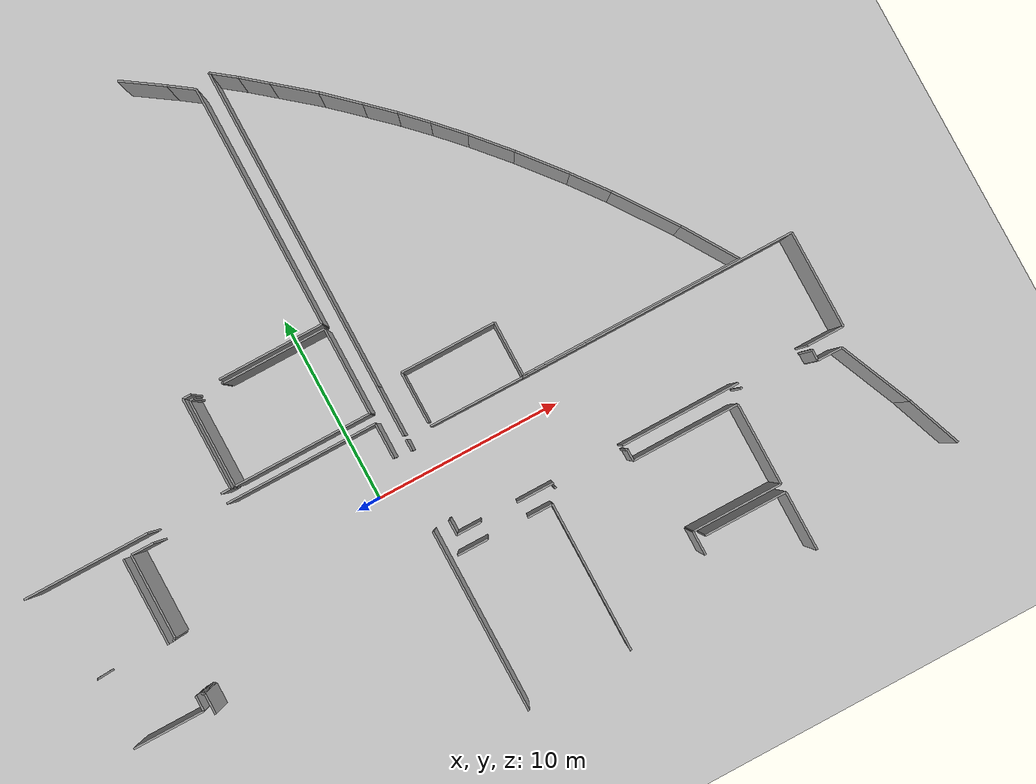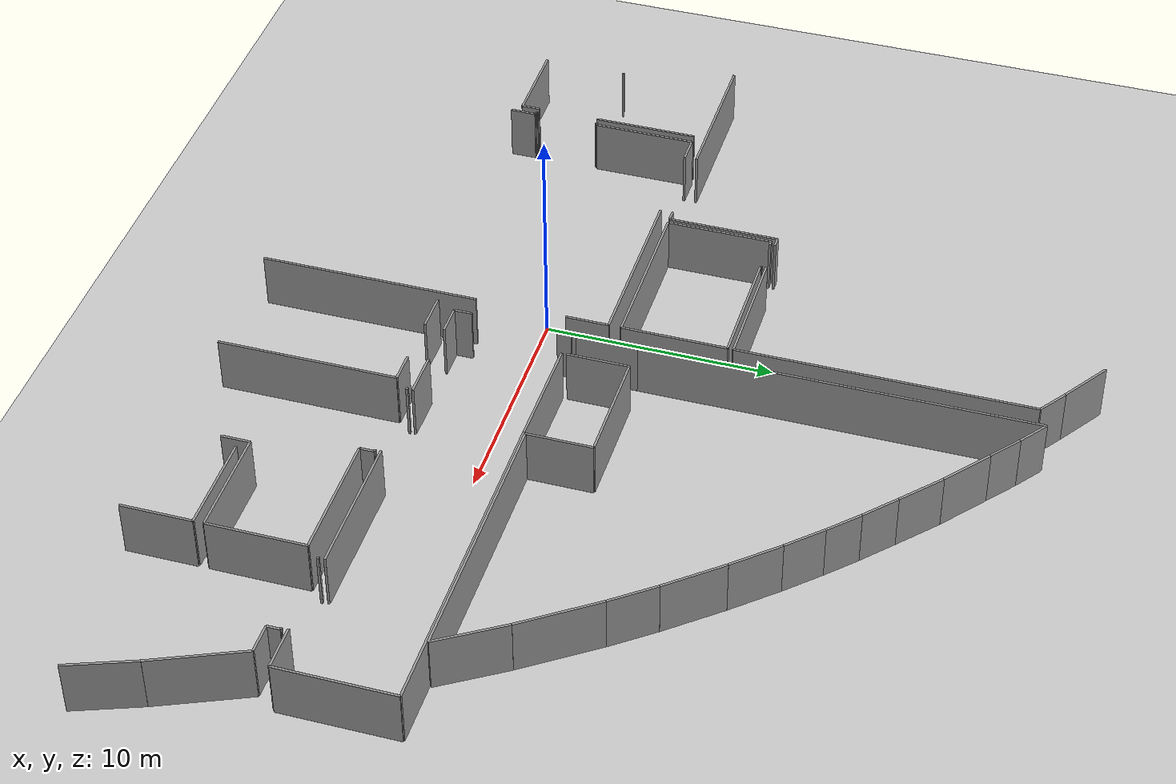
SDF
<sdf version="1.6">
 <world name="default">
  <model name="ground_plane">
   <static>1</static>
   <link name="link">
    <collision name="collision">
     <geometry><plane><normal>0 0 1</normal><size>100 100</size></plane></geometry>
     <surface><friction><ode><mu>100</mu><mu2>50</mu2></ode></friction></surface>
    </collision>
    <visual name="visual">
     <cast_shadows>0</cast_shadows>
     <geometry><plane><normal>0 0 1</normal><size>100 100</size></plane></geometry>
     <material>
      <script><uri>file://media/materials/scripts/gazebo.material</uri><name>Gazebo/Grey</name></script>
     </material>
    </visual>
   </link>
  </model>
  <model name="50041192">
   <static>1</static>
   <link name="Wall_31">
    <collision name="Wall_31_Collision">
     <geometry><box><size>2.39887418967 0.1 2.5</size></box></geometry>
     <pose>1.19943709484 0 1.25 0 0 0</pose>
    </collision>
    <visual name="Wall_31_Visual">
     <pose>1.19943709484 0 1.25 0 0 0</pose>
     <geometry><box><size>2.39887418967 0.1 2.5</size></box></geometry>
     <material>
      <script><uri>file://media/materials/scripts/gazebo.material</uri><name>Gazebo/Grey</name></script>
      <ambient>1 1 1 1</ambient>
     </material>
    </visual>
    <pose>28.3542373528 -10.1845017981 0 0 0 -0.59238087215</pose>
   </link>
   <link name="Wall_32">
    <collision name="Wall_32_Collision">
     <geometry><box><size>1.42702038407 0.1 2.5</size></box></geometry>
     <pose>0.713510192037 0 1.25 0 0 0</pose>
    </collision>
    <visual name="Wall_32_Visual">
     <pose>0.713510192037 0 1.25 0 0 0</pose>
     <geometry><box><size>1.42702038407 0.1 2.5</size></box></geometry>
     <material>
      <script><uri>file://media/materials/scripts/gazebo.material</uri><name>Gazebo/Grey</name></script>
      <ambient>1 1 1 1</ambient>
     </material>
    </visual>
    <pose>30.3443762469 -11.5238839541 0 0 0 -0.618707060109</pose>
   </link>
   <link name="Wall_33">
    <collision name="Wall_33_Collision">
     <geometry><box><size>12.8781467221 0.1 2.5</size></box></geometry>
     <pose>6.43907336104 0 1.25 0 0 0</pose>
    </collision>
    <visual name="Wall_33_Visual">
     <pose>6.43907336104 0 1.25 0 0 0</pose>
     <geometry><box><size>12.8781467221 0.1 2.5</size></box></geometry>
     <material>
      <script><uri>file://media/materials/scripts/gazebo.material</uri><name>Gazebo/Grey</name></script>
      <ambient>1 1 1 1</ambient>
     </material>
    </visual>
    <pose>31.5068684635 -12.3515306317 0 0 0 -1.57079632679</pose>
   </link>
   <link name="Wall_34">
    <collision name="Wall_34_Collision">
     <geometry><box><size>5.59884614896 0.1 2.5</size></box></geometry>
     <pose>2.79942307448 0 1.25 0 0 0</pose>
    </collision>
    <visual name="Wall_34_Visual">
     <pose>2.79942307448 0 1.25 0 0 0</pose>
     <geometry><box><size>5.59884614896 0.1 2.5</size></box></geometry>
     <material>
      <script><uri>file://media/materials/scripts/gazebo.material</uri><name>Gazebo/Grey</name></script>
      <ambient>1 1 1 1</ambient>
     </material>
    </visual>
    <pose>31.5068684635 -25.2296773538 0 0 0 3.14159265359</pose>
   </link>
   <link name="Wall_35">
    <collision name="Wall_35_Collision">
     <geometry><box><size>0.44197069625 0.1 2.5</size></box></geometry>
     <pose>0.220985348125 0 1.25 0 0 0</pose>
    </collision>
    <visual name="Wall_35_Visual">
     <pose>0.220985348125 0 1.25 0 0 0</pose>
     <geometry><box><size>0.44197069625 0.1 2.5</size></box></geometry>
     <material>
      <script><uri>file://media/materials/scripts/gazebo.material</uri><name>Gazebo/Grey</name></script>
      <ambient>1 1 1 1</ambient>
     </material>
    </visual>
    <pose>24.3843798051 -25.2296773538 0 0 0 3.14159265359</pose>
   </link>
   <link name="Wall_36">
    <collision name="Wall_36_Collision">
     <geometry><box><size>4.86841269236 0.1 2.5</size></box></geometry>
     <pose>2.43420634618 0 1.25 0 0 0</pose>
    </collision>
    <visual name="Wall_36_Visual">
     <pose>2.43420634618 0 1.25 0 0 0</pose>
     <geometry><box><size>4.86841269236 0.1 2.5</size></box></geometry>
     <material>
      <script><uri>file://media/materials/scripts/gazebo.material</uri><name>Gazebo/Grey</name></script>
      <ambient>1 1 1 1</ambient>
     </material>
    </visual>
    <pose>23.9424091088 -25.2296773538 0 0 0 -1.57079632679</pose>
   </link>
   <link name="Wall_37">
    <collision name="Wall_37_Collision">
     <geometry><box><size>0.509321032366 0.1 2.5</size></box></geometry>
     <pose>0.254660516183 0 1.25 0 0 0</pose>
    </collision>
    <visual name="Wall_37_Visual">
     <pose>0.254660516183 0 1.25 0 0 0</pose>
     <geometry><box><size>0.509321032366 0.1 2.5</size></box></geometry>
     <material>
      <script><uri>file://media/materials/scripts/gazebo.material</uri><name>Gazebo/Grey</name></script>
      <ambient>1 1 1 1</ambient>
     </material>
    </visual>
    <pose>23.9424091088 -30.0980900461 0 0 0 3.14159265359</pose>
   </link>
   <link name="Wall_38">
    <collision name="Wall_38_Collision">
     <geometry><box><size>6.66437929676 0.1 2.5</size></box></geometry>
     <pose>3.33218964838 0 1.25 0 0 0</pose>
    </collision>
    <visual name="Wall_38_Visual">
     <pose>3.33218964838 0 1.25 0 0 0</pose>
     <geometry><box><size>6.66437929676 0.1 2.5</size></box></geometry>
     <material>
      <script><uri>file://media/materials/scripts/gazebo.material</uri><name>Gazebo/Grey</name></script>
      <ambient>1 1 1 1</ambient>
     </material>
    </visual>
    <pose>19.4511582987 -30.0980900461 0 0 0 3.14159265359</pose>
   </link>
   <link name="Wall_40">
    <collision name="Wall_40_Collision">
     <geometry><box><size>4.64069231062 0.1 2.5</size></box></geometry>
     <pose>2.32034615531 0 1.25 0 0 0</pose>
    </collision>
    <visual name="Wall_40_Visual">
     <pose>2.32034615531 0 1.25 0 0 0</pose>
     <geometry><box><size>4.64069231062 0.1 2.5</size></box></geometry>
     <material>
      <script><uri>file://media/materials/scripts/gazebo.material</uri><name>Gazebo/Grey</name></script>
      <ambient>1 1 1 1</ambient>
     </material>
    </visual>
    <pose>24.1813121879 -30.1007586444 0 0 0 1.57079632679</pose>
   </link>
   <link name="Wall_41">
    <collision name="Wall_41_Collision">
     <geometry><box><size>0.213614933984 0.1 2.5</size></box></geometry>
     <pose>0.106807466992 0 1.25 0 0 0</pose>
    </collision>
    <visual name="Wall_41_Visual">
     <pose>0.106807466992 0 1.25 0 0 0</pose>
     <geometry><box><size>0.213614933984 0.1 2.5</size></box></geometry>
     <material>
      <script><uri>file://media/materials/scripts/gazebo.material</uri><name>Gazebo/Grey</name></script>
      <ambient>1 1 1 1</ambient>
     </material>
    </visual>
    <pose>24.1813121879 -25.4600663337 0 0 0 0.0</pose>
   </link>
   <link name="Wall_42">
    <collision name="Wall_42_Collision">
     <geometry><box><size>0.0908594157041 0.1 2.5</size></box></geometry>
     <pose>0.045429707852 0 1.25 0 0 0</pose>
    </collision>
    <visual name="Wall_42_Visual">
     <pose>0.045429707852 0 1.25 0 0 0</pose>
     <geometry><box><size>0.0908594157041 0.1 2.5</size></box></geometry>
     <material>
      <script><uri>file://media/materials/scripts/gazebo.material</uri><name>Gazebo/Grey</name></script>
      <ambient>1 1 1 1</ambient>
     </material>
    </visual>
    <pose>25.9293711004 -25.4600663337 0 0 0 0.0</pose>
   </link>
   <link name="Wall_43">
    <collision name="Wall_43_Collision">
     <geometry><box><size>0.0198238725173 0.1 2.5</size></box></geometry>
     <pose>0.00991193625863 0 1.25 0 0 0</pose>
    </collision>
    <visual name="Wall_43_Visual">
     <pose>0.00991193625863 0 1.25 0 0 0</pose>
     <geometry><box><size>0.0198238725173 0.1 2.5</size></box></geometry>
     <material>
      <script><uri>file://media/materials/scripts/gazebo.material</uri><name>Gazebo/Grey</name></script>
      <ambient>1 1 1 1</ambient>
     </material>
    </visual>
    <pose>26.0202305161 -25.4600663337 0 0 0 -1.57079632679</pose>
   </link>
   <link name="Wall_44">
    <collision name="Wall_44_Collision">
     <geometry><box><size>5.476471859 0.1 2.5</size></box></geometry>
     <pose>2.7382359295 0 1.25 0 0 0</pose>
    </collision>
    <visual name="Wall_44_Visual">
     <pose>2.7382359295 0 1.25 0 0 0</pose>
     <geometry><box><size>5.476471859 0.1 2.5</size></box></geometry>
     <material>
      <script><uri>file://media/materials/scripts/gazebo.material</uri><name>Gazebo/Grey</name></script>
      <ambient>1 1 1 1</ambient>
     </material>
    </visual>
    <pose>26.0202305161 -25.4798902062 0 0 0 0.0</pose>
   </link>
   <link name="Wall_45">
    <collision name="Wall_45_Collision">
     <geometry><box><size>4.61603954608 0.1 2.5</size></box></geometry>
     <pose>2.30801977304 0 1.25 0 0 0</pose>
    </collision>
    <visual name="Wall_45_Visual">
     <pose>2.30801977304 0 1.25 0 0 0</pose>
     <geometry><box><size>4.61603954608 0.1 2.5</size></box></geometry>
     <material>
      <script><uri>file://media/materials/scripts/gazebo.material</uri><name>Gazebo/Grey</name></script>
      <ambient>1 1 1 1</ambient>
     </material>
    </visual>
    <pose>31.4967023751 -25.4798902062 0 0 0 -1.57079632679</pose>
   </link>
   <link name="Wall_46">
    <collision name="Wall_46_Collision">
     <geometry><box><size>7.31539178096 0.1 2.5</size></box></geometry>
     <pose>3.65769589048 0 1.25 0 0 0</pose>
    </collision>
    <visual name="Wall_46_Visual">
     <pose>3.65769589048 0 1.25 0 0 0</pose>
     <geometry><box><size>7.31539178096 0.1 2.5</size></box></geometry>
     <material>
      <script><uri>file://media/materials/scripts/gazebo.material</uri><name>Gazebo/Grey</name></script>
      <ambient>1 1 1 1</ambient>
     </material>
    </visual>
    <pose>31.4967023751 -30.0959297523 0 0 0 -3.14093255328</pose>
   </link>
   <link name="Wall_54">
    <collision name="Wall_54_Collision">
     <geometry><box><size>1.13110441844 0.1 2.5</size></box></geometry>
     <pose>0.565552209218 0 1.25 0 0 0</pose>
    </collision>
    <visual name="Wall_54_Visual">
     <pose>0.565552209218 0 1.25 0 0 0</pose>
     <geometry><box><size>1.13110441844 0.1 2.5</size></box></geometry>
     <material>
      <script><uri>file://media/materials/scripts/gazebo.material</uri><name>Gazebo/Grey</name></script>
      <ambient>1 1 1 1</ambient>
     </material>
    </visual>
    <pose>18.2867599405 -39.2365140483 0 0 0 1.57079632679</pose>
   </link>
   <link name="Wall_55">
    <collision name="Wall_55_Collision">
     <geometry><box><size>0.111064516539 0.1 2.5</size></box></geometry>
     <pose>0.0555322582695 0 1.25 0 0 0</pose>
    </collision>
    <visual name="Wall_55_Visual">
     <pose>0.0555322582695 0 1.25 0 0 0</pose>
     <geometry><box><size>0.111064516539 0.1 2.5</size></box></geometry>
     <material>
      <script><uri>file://media/materials/scripts/gazebo.material</uri><name>Gazebo/Grey</name></script>
      <ambient>1 1 1 1</ambient>
     </material>
    </visual>
    <pose>18.2867599405 -38.1054096298 0 0 0 3.14159265359</pose>
   </link>
   <link name="Wall_56">
    <collision name="Wall_56_Collision">
     <geometry><box><size>0.105981472304 0.1 2.5</size></box></geometry>
     <pose>0.0529907361519 0 1.25 0 0 0</pose>
    </collision>
    <visual name="Wall_56_Visual">
     <pose>0.0529907361519 0 1.25 0 0 0</pose>
     <geometry><box><size>0.105981472304 0.1 2.5</size></box></geometry>
     <material>
      <script><uri>file://media/materials/scripts/gazebo.material</uri><name>Gazebo/Grey</name></script>
      <ambient>1 1 1 1</ambient>
     </material>
    </visual>
    <pose>18.175695424 -38.1054096298 0 0 0 1.57079632679</pose>
   </link>
   <link name="Wall_57">
    <collision name="Wall_57_Collision">
     <geometry><box><size>0.0973402971039 0.1 2.5</size></box></geometry>
     <pose>0.048670148552 0 1.25 0 0 0</pose>
    </collision>
    <visual name="Wall_57_Visual">
     <pose>0.048670148552 0 1.25 0 0 0</pose>
     <geometry><box><size>0.0973402971039 0.1 2.5</size></box></geometry>
     <material>
      <script><uri>file://media/materials/scripts/gazebo.material</uri><name>Gazebo/Grey</name></script>
      <ambient>1 1 1 1</ambient>
     </material>
    </visual>
    <pose>18.175695424 -35.2355228546 0 0 0 1.57079632679</pose>
   </link>
   <link name="Wall_58">
    <collision name="Wall_58_Collision">
     <geometry><box><size>0.101025504174 0.1 2.5</size></box></geometry>
     <pose>0.0505127520872 0 1.25 0 0 0</pose>
    </collision>
    <visual name="Wall_58_Visual">
     <pose>0.0505127520872 0 1.25 0 0 0</pose>
     <geometry><box><size>0.101025504174 0.1 2.5</size></box></geometry>
     <material>
      <script><uri>file://media/materials/scripts/gazebo.material</uri><name>Gazebo/Grey</name></script>
      <ambient>1 1 1 1</ambient>
     </material>
    </visual>
    <pose>18.175695424 -35.1381825575 0 0 0 0.0</pose>
   </link>
   <link name="Wall_59">
    <collision name="Wall_59_Collision">
     <geometry><box><size>4.49214034285 0.1 2.5</size></box></geometry>
     <pose>2.24607017143 0 1.25 0 0 0</pose>
    </collision>
    <visual name="Wall_59_Visual">
     <pose>2.24607017143 0 1.25 0 0 0</pose>
     <geometry><box><size>4.49214034285 0.1 2.5</size></box></geometry>
     <material>
      <script><uri>file://media/materials/scripts/gazebo.material</uri><name>Gazebo/Grey</name></script>
      <ambient>1 1 1 1</ambient>
     </material>
    </visual>
    <pose>18.2767209282 -35.1381825575 0 0 0 1.57079632679</pose>
   </link>
   <link name="Wall_60">
    <collision name="Wall_60_Collision">
     <geometry><box><size>1.20874791913 0.1 2.5</size></box></geometry>
     <pose>0.604373959564 0 1.25 0 0 0</pose>
    </collision>
    <visual name="Wall_60_Visual">
     <pose>0.604373959564 0 1.25 0 0 0</pose>
     <geometry><box><size>1.20874791913 0.1 2.5</size></box></geometry>
     <material>
      <script><uri>file://media/materials/scripts/gazebo.material</uri><name>Gazebo/Grey</name></script>
      <ambient>1 1 1 1</ambient>
     </material>
    </visual>
    <pose>18.2767209282 -30.6460422147 0 0 0 0.0</pose>
   </link>
   <link name="Wall_61">
    <collision name="Wall_61_Collision">
     <geometry><box><size>8.04556949157 0.1 2.5</size></box></geometry>
     <pose>4.02278474578 0 1.25 0 0 0</pose>
    </collision>
    <visual name="Wall_61_Visual">
     <pose>4.02278474578 0 1.25 0 0 0</pose>
     <geometry><box><size>8.04556949157 0.1 2.5</size></box></geometry>
     <material>
      <script><uri>file://media/materials/scripts/gazebo.material</uri><name>Gazebo/Grey</name></script>
      <ambient>1 1 1 1</ambient>
     </material>
    </visual>
    <pose>23.4488455136 -30.6460422147 0 0 0 0.0</pose>
   </link>
   <link name="Wall_62">
    <collision name="Wall_62_Collision">
     <geometry><box><size>1.89012999886 0.1 2.5</size></box></geometry>
     <pose>0.945064999428 0 1.25 0 0 0</pose>
    </collision>
    <visual name="Wall_62_Visual">
     <pose>0.945064999428 0 1.25 0 0 0</pose>
     <geometry><box><size>1.89012999886 0.1 2.5</size></box></geometry>
     <material>
      <script><uri>file://media/materials/scripts/gazebo.material</uri><name>Gazebo/Grey</name></script>
      <ambient>1 1 1 1</ambient>
     </material>
    </visual>
    <pose>31.4944150051 -30.6460422147 0 0 0 -1.57079632679</pose>
   </link>
   <link name="Wall_63">
    <collision name="Wall_63_Collision">
     <geometry><box><size>9.65257392652 0.1 2.5</size></box></geometry>
     <pose>4.82628696326 0 1.25 0 0 0</pose>
    </collision>
    <visual name="Wall_63_Visual">
     <pose>4.82628696326 0 1.25 0 0 0</pose>
     <geometry><box><size>9.65257392652 0.1 2.5</size></box></geometry>
     <material>
      <script><uri>file://media/materials/scripts/gazebo.material</uri><name>Gazebo/Grey</name></script>
      <ambient>1 1 1 1</ambient>
     </material>
    </visual>
    <pose>31.4944150051 -36.510604501 0 0 0 -1.57079632679</pose>
   </link>
   <link name="Wall_72">
    <collision name="Wall_72_Collision">
     <geometry><box><size>4.61260849123 0.1 2.5</size></box></geometry>
     <pose>2.30630424561 0 1.25 0 0 0</pose>
    </collision>
    <visual name="Wall_72_Visual">
     <pose>2.30630424561 0 1.25 0 0 0</pose>
     <geometry><box><size>4.61260849123 0.1 2.5</size></box></geometry>
     <material>
      <script><uri>file://media/materials/scripts/gazebo.material</uri><name>Gazebo/Grey</name></script>
      <ambient>1 1 1 1</ambient>
     </material>
    </visual>
    <pose>17.8562260938 -30.646423443 0 0 0 -1.57079632679</pose>
   </link>
   <link name="Wall_73">
    <collision name="Wall_73_Collision">
     <geometry><box><size>0.808712337819 0.1 2.5</size></box></geometry>
     <pose>0.40435616891 0 1.25 0 0 0</pose>
    </collision>
    <visual name="Wall_73_Visual">
     <pose>0.40435616891 0 1.25 0 0 0</pose>
     <geometry><box><size>0.808712337819 0.1 2.5</size></box></geometry>
     <material>
      <script><uri>file://media/materials/scripts/gazebo.material</uri><name>Gazebo/Grey</name></script>
      <ambient>1 1 1 1</ambient>
     </material>
    </visual>
    <pose>17.8562260938 -38.0200144867 0 0 0 -1.57079632679</pose>
   </link>
   <link name="Wall_74">
    <collision name="Wall_74_Collision">
     <geometry><box><size>3.7669170066 0.1 2.5</size></box></geometry>
     <pose>1.8834585033 0 1.25 0 0 0</pose>
    </collision>
    <visual name="Wall_74_Visual">
     <pose>1.8834585033 0 1.25 0 0 0</pose>
     <geometry><box><size>3.7669170066 0.1 2.5</size></box></geometry>
     <material>
      <script><uri>file://media/materials/scripts/gazebo.material</uri><name>Gazebo/Grey</name></script>
      <ambient>1 1 1 1</ambient>
     </material>
    </visual>
    <pose>17.8562260938 -38.8287268245 0 0 0 3.14159265359</pose>
   </link>
   <link name="Wall_79">
    <collision name="Wall_79_Collision">
     <geometry><box><size>0.0510845945637 0.1 2.5</size></box></geometry>
     <pose>0.0255422972818 0 1.25 0 0 0</pose>
    </collision>
    <visual name="Wall_79_Visual">
     <pose>0.0255422972818 0 1.25 0 0 0</pose>
     <geometry><box><size>0.0510845945637 0.1 2.5</size></box></geometry>
     <material>
      <script><uri>file://media/materials/scripts/gazebo.material</uri><name>Gazebo/Grey</name></script>
      <ambient>1 1 1 1</ambient>
     </material>
    </visual>
    <pose>14.1368355508 -35.1033637045 0 0 0 3.14159265359</pose>
   </link>
   <link name="Wall_81">
    <collision name="Wall_81_Collision">
     <geometry><box><size>17.1731920247 0.1 2.5</size></box></geometry>
     <pose>8.58659601235 0 1.25 0 0 0</pose>
    </collision>
    <visual name="Wall_81_Visual">
     <pose>8.58659601235 0 1.25 0 0 0</pose>
     <geometry><box><size>17.1731920247 0.1 2.5</size></box></geometry>
     <material>
      <script><uri>file://media/materials/scripts/gazebo.material</uri><name>Gazebo/Grey</name></script>
      <ambient>1 1 1 1</ambient>
     </material>
    </visual>
    <pose>32.4150813922 -29.1052444309 0 0 0 1.57079632679</pose>
   </link>
   <link name="Wall_82">
    <collision name="Wall_82_Collision">
     <geometry><box><size>1.44503381173 0.1 2.5</size></box></geometry>
     <pose>0.722516905864 0 1.25 0 0 0</pose>
    </collision>
    <visual name="Wall_82_Visual">
     <pose>0.722516905864 0 1.25 0 0 0</pose>
     <geometry><box><size>1.44503381173 0.1 2.5</size></box></geometry>
     <material>
      <script><uri>file://media/materials/scripts/gazebo.material</uri><name>Gazebo/Grey</name></script>
      <ambient>1 1 1 1</ambient>
     </material>
    </visual>
    <pose>32.4150813922 -11.9320524062 0 0 0 -0.644398095731</pose>
   </link>
   <link name="Wall_83">
    <collision name="Wall_83_Collision">
     <geometry><box><size>1.56282057982 0.1 2.5</size></box></geometry>
     <pose>0.781410289909 0 1.25 0 0 0</pose>
    </collision>
    <visual name="Wall_83_Visual">
     <pose>0.781410289909 0 1.25 0 0 0</pose>
     <geometry><box><size>1.56282057982 0.1 2.5</size></box></geometry>
     <material>
      <script><uri>file://media/materials/scripts/gazebo.material</uri><name>Gazebo/Grey</name></script>
      <ambient>1 1 1 1</ambient>
     </material>
    </visual>
    <pose>33.5703302708 -12.8001092855 0 0 0 -0.68281746989</pose>
   </link>
   <link name="Wall_84">
    <collision name="Wall_84_Collision">
     <geometry><box><size>2.39352154909 0.1 2.5</size></box></geometry>
     <pose>1.19676077454 0 1.25 0 0 0</pose>
    </collision>
    <visual name="Wall_84_Visual">
     <pose>1.19676077454 0 1.25 0 0 0</pose>
     <geometry><box><size>2.39352154909 0.1 2.5</size></box></geometry>
     <material>
      <script><uri>file://media/materials/scripts/gazebo.material</uri><name>Gazebo/Grey</name></script>
      <ambient>1 1 1 1</ambient>
     </material>
    </visual>
    <pose>34.782763397 -13.7862198671 0 0 0 -0.683861750658</pose>
   </link>
   <link name="Wall_85">
    <collision name="Wall_85_Collision">
     <geometry><box><size>2.18574596155 0.1 2.5</size></box></geometry>
     <pose>1.09287298077 0 1.25 0 0 0</pose>
    </collision>
    <visual name="Wall_85_Visual">
     <pose>1.09287298077 0 1.25 0 0 0</pose>
     <geometry><box><size>2.18574596155 0.1 2.5</size></box></geometry>
     <material>
      <script><uri>file://media/materials/scripts/gazebo.material</uri><name>Gazebo/Grey</name></script>
      <ambient>1 1 1 1</ambient>
     </material>
    </visual>
    <pose>36.6380745428 -15.298425527 0 0 0 -0.740161555618</pose>
   </link>
   <link name="Wall_86">
    <collision name="Wall_86_Collision">
     <geometry><box><size>1.74210203803 0.1 2.5</size></box></geometry>
     <pose>0.871051019017 0 1.25 0 0 0</pose>
    </collision>
    <visual name="Wall_86_Visual">
     <pose>0.871051019017 0 1.25 0 0 0</pose>
     <geometry><box><size>1.74210203803 0.1 2.5</size></box></geometry>
     <material>
      <script><uri>file://media/materials/scripts/gazebo.material</uri><name>Gazebo/Grey</name></script>
      <ambient>1 1 1 1</ambient>
     </material>
    </visual>
    <pose>38.2519410875 -16.7725083553 0 0 0 -0.746549191015</pose>
   </link>
   <link name="Wall_87">
    <collision name="Wall_87_Collision">
     <geometry><box><size>1.66182811455 0.1 2.5</size></box></geometry>
     <pose>0.830914057274 0 1.25 0 0 0</pose>
    </collision>
    <visual name="Wall_87_Visual">
     <pose>0.830914057274 0 1.25 0 0 0</pose>
     <geometry><box><size>1.66182811455 0.1 2.5</size></box></geometry>
     <material>
      <script><uri>file://media/materials/scripts/gazebo.material</uri><name>Gazebo/Grey</name></script>
      <ambient>1 1 1 1</ambient>
     </material>
    </visual>
    <pose>39.530707941 -17.955586901 0 0 0 -0.779991057015</pose>
   </link>
   <link name="Wall_88">
    <collision name="Wall_88_Collision">
     <geometry><box><size>1.89194413627 0.1 2.5</size></box></geometry>
     <pose>0.945972068134 0 1.25 0 0 0</pose>
    </collision>
    <visual name="Wall_88_Visual">
     <pose>0.945972068134 0 1.25 0 0 0</pose>
     <geometry><box><size>1.89194413627 0.1 2.5</size></box></geometry>
     <material>
      <script><uri>file://media/materials/scripts/gazebo.material</uri><name>Gazebo/Grey</name></script>
      <ambient>1 1 1 1</ambient>
     </material>
    </visual>
    <pose>40.7121344974 -19.1243058468 0 0 0 -0.807627280386</pose>
   </link>
   <link name="Wall_89">
    <collision name="Wall_89_Collision">
     <geometry><box><size>2.39229482902 0.1 2.5</size></box></geometry>
     <pose>1.19614741451 0 1.25 0 0 0</pose>
    </collision>
    <visual name="Wall_89_Visual">
     <pose>1.19614741451 0 1.25 0 0 0</pose>
     <geometry><box><size>2.39229482902 0.1 2.5</size></box></geometry>
     <material>
      <script><uri>file://media/materials/scripts/gazebo.material</uri><name>Gazebo/Grey</name></script>
      <ambient>1 1 1 1</ambient>
     </material>
    </visual>
    <pose>42.019874703 -20.4915176699 0 0 0 -0.842596801599</pose>
   </link>
   <link name="Wall_90">
    <collision name="Wall_90_Collision">
     <geometry><box><size>2.85792089007 0.1 2.5</size></box></geometry>
     <pose>1.42896044504 0 1.25 0 0 0</pose>
    </collision>
    <visual name="Wall_90_Visual">
     <pose>1.42896044504 0 1.25 0 0 0</pose>
     <geometry><box><size>2.85792089007 0.1 2.5</size></box></geometry>
     <material>
      <script><uri>file://media/materials/scripts/gazebo.material</uri><name>Gazebo/Grey</name></script>
      <ambient>1 1 1 1</ambient>
     </material>
    </visual>
    <pose>43.6120112335 -22.2770640336 0 0 0 -0.877714743323</pose>
   </link>
   <link name="Wall_91">
    <collision name="Wall_91_Collision">
     <geometry><box><size>2.18430889218 0.1 2.5</size></box></geometry>
     <pose>1.09215444609 0 1.25 0 0 0</pose>
    </collision>
    <visual name="Wall_91_Visual">
     <pose>1.09215444609 0 1.25 0 0 0</pose>
     <geometry><box><size>2.18430889218 0.1 2.5</size></box></geometry>
     <material>
      <script><uri>file://media/materials/scripts/gazebo.material</uri><name>Gazebo/Grey</name></script>
      <ambient>1 1 1 1</ambient>
     </material>
    </visual>
    <pose>45.4379677989 -24.4756077415 0 0 0 -0.913727971563</pose>
   </link>
   <link name="Wall_92">
    <collision name="Wall_92_Collision">
     <geometry><box><size>3.73266425463 0.1 2.5</size></box></geometry>
     <pose>1.86633212731 0 1.25 0 0 0</pose>
    </collision>
    <visual name="Wall_92_Visual">
     <pose>1.86633212731 0 1.25 0 0 0</pose>
     <geometry><box><size>3.73266425463 0.1 2.5</size></box></geometry>
     <material>
      <script><uri>file://media/materials/scripts/gazebo.material</uri><name>Gazebo/Grey</name></script>
      <ambient>1 1 1 1</ambient>
     </material>
    </visual>
    <pose>46.7721398345 -26.2051135425 0 0 0 -0.956182456876</pose>
   </link>
   <link name="Wall_93">
    <collision name="Wall_93_Collision">
     <geometry><box><size>3.20976708383 0.1 2.5</size></box></geometry>
     <pose>1.60488354191 0 1.25 0 0 0</pose>
    </collision>
    <visual name="Wall_93_Visual">
     <pose>1.60488354191 0 1.25 0 0 0</pose>
     <geometry><box><size>3.20976708383 0.1 2.5</size></box></geometry>
     <material>
      <script><uri>file://media/materials/scripts/gazebo.material</uri><name>Gazebo/Grey</name></script>
      <ambient>1 1 1 1</ambient>
     </material>
    </visual>
    <pose>48.9245549159 -29.2546859314 0 0 0 -1.00489909625</pose>
   </link>
   <link name="Wall_94">
    <collision name="Wall_94_Collision">
     <geometry><box><size>11.8123594221 0.1 2.5</size></box></geometry>
     <pose>5.90617971103 0 1.25 0 0 0</pose>
    </collision>
    <visual name="Wall_94_Visual">
     <pose>5.90617971103 0 1.25 0 0 0</pose>
     <geometry><box><size>11.8123594221 0.1 2.5</size></box></geometry>
     <material>
      <script><uri>file://media/materials/scripts/gazebo.material</uri><name>Gazebo/Grey</name></script>
      <ambient>1 1 1 1</ambient>
     </material>
    </visual>
    <pose>50.6455466179 -31.9640755849 0 0 0 3.14159265359</pose>
   </link>
   <link name="Wall_95">
    <collision name="Wall_95_Collision">
     <geometry><box><size>2.88017993977 0.1 2.5</size></box></geometry>
     <pose>1.44008996988 0 1.25 0 0 0</pose>
    </collision>
    <visual name="Wall_95_Visual">
     <pose>1.44008996988 0 1.25 0 0 0</pose>
     <geometry><box><size>2.88017993977 0.1 2.5</size></box></geometry>
     <material>
      <script><uri>file://media/materials/scripts/gazebo.material</uri><name>Gazebo/Grey</name></script>
      <ambient>1 1 1 1</ambient>
     </material>
    </visual>
    <pose>38.8331871958 -31.9640755849 0 0 0 1.57079632679</pose>
   </link>
   <link name="Wall_96">
    <collision name="Wall_96_Collision">
     <geometry><box><size>5.08012148476 0.1 2.5</size></box></geometry>
     <pose>2.54006074238 0 1.25 0 0 0</pose>
    </collision>
    <visual name="Wall_96_Visual">
     <pose>2.54006074238 0 1.25 0 0 0</pose>
     <geometry><box><size>5.08012148476 0.1 2.5</size></box></geometry>
     <material>
      <script><uri>file://media/materials/scripts/gazebo.material</uri><name>Gazebo/Grey</name></script>
      <ambient>1 1 1 1</ambient>
     </material>
    </visual>
    <pose>38.8331871958 -29.0838956451 0 0 0 3.14159265359</pose>
   </link>
   <link name="Wall_97">
    <collision name="Wall_97_Collision">
     <geometry><box><size>2.71320193664 0.1 2.5</size></box></geometry>
     <pose>1.35660096832 0 1.25 0 0 0</pose>
    </collision>
    <visual name="Wall_97_Visual">
     <pose>1.35660096832 0 1.25 0 0 0</pose>
     <geometry><box><size>2.71320193664 0.1 2.5</size></box></geometry>
     <material>
      <script><uri>file://media/materials/scripts/gazebo.material</uri><name>Gazebo/Grey</name></script>
      <ambient>1 1 1 1</ambient>
     </material>
    </visual>
    <pose>33.7530657111 -29.0838956451 0 0 0 -1.57079632679</pose>
   </link>
   <link name="Wall_98">
    <collision name="Wall_98_Collision">
     <geometry><box><size>2.69185412268 0.1 2.5</size></box></geometry>
     <pose>1.34592706134 0 1.25 0 0 0</pose>
    </collision>
    <visual name="Wall_98_Visual">
     <pose>1.34592706134 0 1.25 0 0 0</pose>
     <geometry><box><size>2.69185412268 0.1 2.5</size></box></geometry>
     <material>
      <script><uri>file://media/materials/scripts/gazebo.material</uri><name>Gazebo/Grey</name></script>
      <ambient>1 1 1 1</ambient>
     </material>
    </visual>
    <pose>32.4173687622 -31.7970975817 0 0 0 1.57164606459</pose>
   </link>
   <link name="Wall_99">
    <collision name="Wall_99_Collision">
     <geometry><box><size>14.7086780273 0.1 2.5</size></box></geometry>
     <pose>7.35433901364 0 1.25 0 0 0</pose>
    </collision>
    <visual name="Wall_99_Visual">
     <pose>7.35433901364 0 1.25 0 0 0</pose>
     <geometry><box><size>14.7086780273 0.1 2.5</size></box></geometry>
     <material>
      <script><uri>file://media/materials/scripts/gazebo.material</uri><name>Gazebo/Grey</name></script>
      <ambient>1 1 1 1</ambient>
     </material>
    </visual>
    <pose>38.7593559783 -32.0407024767 0 0 0 0.0</pose>
   </link>
   <link name="Wall_100">
    <collision name="Wall_100_Collision">
     <geometry><box><size>5.14022848284 0.1 2.5</size></box></geometry>
     <pose>2.57011424142 0 1.25 0 0 0</pose>
    </collision>
    <visual name="Wall_100_Visual">
     <pose>2.57011424142 0 1.25 0 0 0</pose>
     <geometry><box><size>5.14022848284 0.1 2.5</size></box></geometry>
     <material>
      <script><uri>file://media/materials/scripts/gazebo.material</uri><name>Gazebo/Grey</name></script>
      <ambient>1 1 1 1</ambient>
     </material>
    </visual>
    <pose>53.4680340056 -32.0407024767 0 0 0 -1.57079632679</pose>
   </link>
   <link name="Wall_101">
    <collision name="Wall_101_Collision">
     <geometry><box><size>1.94922038809 0.1 2.5</size></box></geometry>
     <pose>0.974610194045 0 1.25 0 0 0</pose>
    </collision>
    <visual name="Wall_101_Visual">
     <pose>0.974610194045 0 1.25 0 0 0</pose>
     <geometry><box><size>1.94922038809 0.1 2.5</size></box></geometry>
     <material>
      <script><uri>file://media/materials/scripts/gazebo.material</uri><name>Gazebo/Grey</name></script>
      <ambient>1 1 1 1</ambient>
     </material>
    </visual>
    <pose>53.4680340056 -37.1809309596 0 0 0 3.14159265359</pose>
   </link>
   <link name="Wall_102">
    <collision name="Wall_102_Collision">
     <geometry><box><size>6.31034526578 0.1 2.5</size></box></geometry>
     <pose>3.15517263289 0 1.25 0 0 0</pose>
    </collision>
    <visual name="Wall_102_Visual">
     <pose>3.15517263289 0 1.25 0 0 0</pose>
     <geometry><box><size>6.31034526578 0.1 2.5</size></box></geometry>
     <material>
      <script><uri>file://media/materials/scripts/gazebo.material</uri><name>Gazebo/Grey</name></script>
      <ambient>1 1 1 1</ambient>
     </material>
    </visual>
    <pose>47.7396973047 -37.1809309596 0 0 0 3.14159265359</pose>
   </link>
   <link name="Wall_103">
    <collision name="Wall_103_Collision">
     <geometry><box><size>1.97768543581 0.1 2.5</size></box></geometry>
     <pose>0.988842717904 0 1.25 0 0 0</pose>
    </collision>
    <visual name="Wall_103_Visual">
     <pose>0.988842717904 0 1.25 0 0 0</pose>
     <geometry><box><size>1.97768543581 0.1 2.5</size></box></geometry>
     <material>
      <script><uri>file://media/materials/scripts/gazebo.material</uri><name>Gazebo/Grey</name></script>
      <ambient>1 1 1 1</ambient>
     </material>
    </visual>
    <pose>37.6642140978 -37.1809309596 0 0 0 3.14159265359</pose>
   </link>
   <link name="Wall_104">
    <collision name="Wall_104_Collision">
     <geometry><box><size>1.31142541268 0.1 2.5</size></box></geometry>
     <pose>0.65571270634 0 1.25 0 0 0</pose>
    </collision>
    <visual name="Wall_104_Visual">
     <pose>0.65571270634 0 1.25 0 0 0</pose>
     <geometry><box><size>1.31142541268 0.1 2.5</size></box></geometry>
     <material>
      <script><uri>file://media/materials/scripts/gazebo.material</uri><name>Gazebo/Grey</name></script>
      <ambient>1 1 1 1</ambient>
     </material>
    </visual>
    <pose>33.7362916651 -37.1809309596 0 0 0 3.14159265359</pose>
   </link>
   <link name="Wall_105">
    <collision name="Wall_105_Collision">
     <geometry><box><size>0.78863431309 0.1 2.5</size></box></geometry>
     <pose>0.394317156545 0 1.25 0 0 0</pose>
    </collision>
    <visual name="Wall_105_Visual">
     <pose>0.394317156545 0 1.25 0 0 0</pose>
     <geometry><box><size>0.78863431309 0.1 2.5</size></box></geometry>
     <material>
      <script><uri>file://media/materials/scripts/gazebo.material</uri><name>Gazebo/Grey</name></script>
      <ambient>1 1 1 1</ambient>
     </material>
    </visual>
    <pose>32.4248662524 -37.1809309596 0 0 0 1.57079632679</pose>
   </link>
   <link name="Wall_106">
    <collision name="Wall_106_Collision">
     <geometry><box><size>0.618352331211 0.1 2.5</size></box></geometry>
     <pose>0.309176165606 0 1.25 0 0 0</pose>
    </collision>
    <visual name="Wall_106_Visual">
     <pose>0.309176165606 0 1.25 0 0 0</pose>
     <geometry><box><size>0.618352331211 0.1 2.5</size></box></geometry>
     <material>
      <script><uri>file://media/materials/scripts/gazebo.material</uri><name>Gazebo/Grey</name></script>
      <ambient>1 1 1 1</ambient>
     </material>
    </visual>
    <pose>32.4248662524 -32.6263962487 0 0 0 1.57079632679</pose>
   </link>
   <link name="Wall_107">
    <collision name="Wall_107_Collision">
     <geometry><box><size>4.99686628548 0.1 2.5</size></box></geometry>
     <pose>2.49843314274 0 1.25 0 0 0</pose>
    </collision>
    <visual name="Wall_107_Visual">
     <pose>2.49843314274 0 1.25 0 0 0</pose>
     <geometry><box><size>4.99686628548 0.1 2.5</size></box></geometry>
     <material>
      <script><uri>file://media/materials/scripts/gazebo.material</uri><name>Gazebo/Grey</name></script>
      <ambient>1 1 1 1</ambient>
     </material>
    </visual>
    <pose>33.762596419 -32.0080439175 0 0 0 -0.00653585464593</pose>
   </link>
   <link name="Wall_109">
    <collision name="Wall_109_Collision">
     <geometry><box><size>1.66571359587 0.1 2.5</size></box></geometry>
     <pose>0.832856797936 0 1.25 0 0 0</pose>
    </collision>
    <visual name="Wall_109_Visual">
     <pose>0.832856797936 0 1.25 0 0 0</pose>
     <geometry><box><size>1.66571359587 0.1 2.5</size></box></geometry>
     <material>
      <script><uri>file://media/materials/scripts/gazebo.material</uri><name>Gazebo/Grey</name></script>
      <ambient>1 1 1 1</ambient>
     </material>
    </visual>
    <pose>31.9872161437 -38.0586456229 0 0 0 0.0</pose>
   </link>
   <link name="Wall_110">
    <collision name="Wall_110_Collision">
     <geometry><box><size>1.3355698728 0.1 2.5</size></box></geometry>
     <pose>0.667784936398 0 1.25 0 0 0</pose>
    </collision>
    <visual name="Wall_110_Visual">
     <pose>0.667784936398 0 1.25 0 0 0</pose>
     <geometry><box><size>1.3355698728 0.1 2.5</size></box></geometry>
     <material>
      <script><uri>file://media/materials/scripts/gazebo.material</uri><name>Gazebo/Grey</name></script>
      <ambient>1 1 1 1</ambient>
     </material>
    </visual>
    <pose>35.8014054617 -38.0586456229 0 0 0 0.0</pose>
   </link>
   <link name="Wall_111">
    <collision name="Wall_111_Collision">
     <geometry><box><size>7.90781899279 0.1 2.5</size></box></geometry>
     <pose>3.9539094964 0 1.25 0 0 0</pose>
    </collision>
    <visual name="Wall_111_Visual">
     <pose>3.9539094964 0 1.25 0 0 0</pose>
     <geometry><box><size>7.90781899279 0.1 2.5</size></box></geometry>
     <material>
      <script><uri>file://media/materials/scripts/gazebo.material</uri><name>Gazebo/Grey</name></script>
      <ambient>1 1 1 1</ambient>
     </material>
    </visual>
    <pose>37.1369753345 -38.0586456229 0 0 0 -1.57079632679</pose>
   </link>
   <link name="Wall_115">
    <collision name="Wall_115_Collision">
     <geometry><box><size>0.104583635139 0.1 2.5</size></box></geometry>
     <pose>0.0522918175695 0 1.25 0 0 0</pose>
    </collision>
    <visual name="Wall_115_Visual">
     <pose>0.0522918175695 0 1.25 0 0 0</pose>
     <geometry><box><size>0.104583635139 0.1 2.5</size></box></geometry>
     <material>
      <script><uri>file://media/materials/scripts/gazebo.material</uri><name>Gazebo/Grey</name></script>
      <ambient>1 1 1 1</ambient>
     </material>
    </visual>
    <pose>37.5865705971 -37.4302542793 0 0 0 0.0</pose>
   </link>
   <link name="Wall_116">
    <collision name="Wall_116_Collision">
     <geometry><box><size>0.0949258510922 0.1 2.5</size></box></geometry>
     <pose>0.0474629255461 0 1.25 0 0 0</pose>
    </collision>
    <visual name="Wall_116_Visual">
     <pose>0.0474629255461 0 1.25 0 0 0</pose>
     <geometry><box><size>0.0949258510922 0.1 2.5</size></box></geometry>
     <material>
      <script><uri>file://media/materials/scripts/gazebo.material</uri><name>Gazebo/Grey</name></script>
      <ambient>1 1 1 1</ambient>
     </material>
    </visual>
    <pose>41.4391368991 -37.4302542793 0 0 0 0.0</pose>
   </link>
   <link name="Wall_117">
    <collision name="Wall_117_Collision">
     <geometry><box><size>0.632076550646 0.1 2.5</size></box></geometry>
     <pose>0.316038275323 0 1.25 0 0 0</pose>
    </collision>
    <visual name="Wall_117_Visual">
     <pose>0.316038275323 0 1.25 0 0 0</pose>
     <geometry><box><size>0.632076550646 0.1 2.5</size></box></geometry>
     <material>
      <script><uri>file://media/materials/scripts/gazebo.material</uri><name>Gazebo/Grey</name></script>
      <ambient>1 1 1 1</ambient>
     </material>
    </visual>
    <pose>41.5340627502 -37.4302542793 0 0 0 -1.57079632679</pose>
   </link>
   <link name="Wall_118">
    <collision name="Wall_118_Collision">
     <geometry><box><size>5.6905950974 0.1 2.5</size></box></geometry>
     <pose>2.8452975487 0 1.25 0 0 0</pose>
    </collision>
    <visual name="Wall_118_Visual">
     <pose>2.8452975487 0 1.25 0 0 0</pose>
     <geometry><box><size>5.6905950974 0.1 2.5</size></box></geometry>
     <material>
      <script><uri>file://media/materials/scripts/gazebo.material</uri><name>Gazebo/Grey</name></script>
      <ambient>1 1 1 1</ambient>
     </material>
    </visual>
    <pose>41.5340627502 -38.0623308299 0 0 0 0.0</pose>
   </link>
   <link name="Wall_119">
    <collision name="Wall_119_Collision">
     <geometry><box><size>4.32846631848 0.1 2.5</size></box></geometry>
     <pose>2.16423315924 0 1.25 0 0 0</pose>
    </collision>
    <visual name="Wall_119_Visual">
     <pose>2.16423315924 0 1.25 0 0 0</pose>
     <geometry><box><size>4.32846631848 0.1 2.5</size></box></geometry>
     <material>
      <script><uri>file://media/materials/scripts/gazebo.material</uri><name>Gazebo/Grey</name></script>
      <ambient>1 1 1 1</ambient>
     </material>
    </visual>
    <pose>47.2246578476 -38.0623308299 0 0 0 -1.57079632679</pose>
   </link>
   <link name="Wall_120">
    <collision name="Wall_120_Collision">
     <geometry><box><size>4.79267533326 0.1 2.5</size></box></geometry>
     <pose>2.39633766663 0 1.25 0 0 0</pose>
    </collision>
    <visual name="Wall_120_Visual">
     <pose>2.39633766663 0 1.25 0 0 0</pose>
     <geometry><box><size>4.79267533326 0.1 2.5</size></box></geometry>
     <material>
      <script><uri>file://media/materials/scripts/gazebo.material</uri><name>Gazebo/Grey</name></script>
      <ambient>1 1 1 1</ambient>
     </material>
    </visual>
    <pose>47.2246578476 -42.3907971484 0 0 0 3.14159265359</pose>
   </link>
   <link name="Wall_121">
    <collision name="Wall_121_Collision">
     <geometry><box><size>1.26326356855 0.1 2.5</size></box></geometry>
     <pose>0.631631784276 0 1.25 0 0 0</pose>
    </collision>
    <visual name="Wall_121_Visual">
     <pose>0.631631784276 0 1.25 0 0 0</pose>
     <geometry><box><size>1.26326356855 0.1 2.5</size></box></geometry>
     <material>
      <script><uri>file://media/materials/scripts/gazebo.material</uri><name>Gazebo/Grey</name></script>
      <ambient>1 1 1 1</ambient>
     </material>
    </visual>
    <pose>42.4319825143 -42.3907971484 0 0 0 -1.57079632679</pose>
   </link>
   <link name="Wall_126">
    <collision name="Wall_126_Collision">
     <geometry><box><size>4.37535740155 0.1 2.5</size></box></geometry>
     <pose>2.18767870077 0 1.25 0 0 0</pose>
    </collision>
    <visual name="Wall_126_Visual">
     <pose>2.18767870077 0 1.25 0 0 0</pose>
     <geometry><box><size>4.37535740155 0.1 2.5</size></box></geometry>
     <material>
      <script><uri>file://media/materials/scripts/gazebo.material</uri><name>Gazebo/Grey</name></script>
      <ambient>1 1 1 1</ambient>
     </material>
    </visual>
    <pose>42.8616268283 -42.8336573774 0 0 0 0.0</pose>
   </link>
   <link name="Wall_127">
    <collision name="Wall_127_Collision">
     <geometry><box><size>3.1316635533 0.1 2.5</size></box></geometry>
     <pose>1.56583177665 0 1.25 0 0 0</pose>
    </collision>
    <visual name="Wall_127_Visual">
     <pose>1.56583177665 0 1.25 0 0 0</pose>
     <geometry><box><size>3.1316635533 0.1 2.5</size></box></geometry>
     <material>
      <script><uri>file://media/materials/scripts/gazebo.material</uri><name>Gazebo/Grey</name></script>
      <ambient>1 1 1 1</ambient>
     </material>
    </visual>
    <pose>47.2369842299 -42.8336573774 0 0 0 -1.57079632679</pose>
   </link>
   <link name="Wall_131">
    <collision name="Wall_131_Collision">
     <geometry><box><size>4.12750156963 0.1 2.5</size></box></geometry>
     <pose>2.06375078482 0 1.25 0 0 0</pose>
    </collision>
    <visual name="Wall_131_Visual">
     <pose>2.06375078482 0 1.25 0 0 0</pose>
     <geometry><box><size>4.12750156963 0.1 2.5</size></box></geometry>
     <material>
      <script><uri>file://media/materials/scripts/gazebo.material</uri><name>Gazebo/Grey</name></script>
      <ambient>1 1 1 1</ambient>
     </material>
    </visual>
    <pose>52.9209713698 -38.0428881857 0 0 0 -1.16059655878</pose>
   </link>
   <link name="Wall_132">
    <collision name="Wall_132_Collision">
     <geometry><box><size>3.03550018759 0.1 2.5</size></box></geometry>
     <pose>1.5177500938 0 1.25 0 0 0</pose>
    </collision>
    <visual name="Wall_132_Visual">
     <pose>1.5177500938 0 1.25 0 0 0</pose>
     <geometry><box><size>3.03550018759 0.1 2.5</size></box></geometry>
     <material>
      <script><uri>file://media/materials/scripts/gazebo.material</uri><name>Gazebo/Grey</name></script>
      <ambient>1 1 1 1</ambient>
     </material>
    </visual>
    <pose>54.5669881692 -41.8279770755 0 0 0 -1.20913481143</pose>
   </link>
   <link name="Wall_139">
    <collision name="Wall_139_Collision">
     <geometry><box><size>0.10826884221 0.1 2.5</size></box></geometry>
     <pose>0.0541344211048 0 1.25 0 0 0</pose>
    </collision>
    <visual name="Wall_139_Visual">
     <pose>0.0541344211048 0 1.25 0 0 0</pose>
     <geometry><box><size>0.10826884221 0.1 2.5</size></box></geometry>
     <material>
      <script><uri>file://media/materials/scripts/gazebo.material</uri><name>Gazebo/Grey</name></script>
      <ambient>1 1 1 1</ambient>
     </material>
    </visual>
    <pose>47.6757780235 -37.4610066969 0 0 0 0.0</pose>
   </link>
   <link name="Wall_140">
    <collision name="Wall_140_Collision">
     <geometry><box><size>0.0785330334337 0.1 2.5</size></box></geometry>
     <pose>0.0392665167169 0 1.25 0 0 0</pose>
    </collision>
    <visual name="Wall_140_Visual">
     <pose>0.0392665167169 0 1.25 0 0 0</pose>
     <geometry><box><size>0.0785330334337 0.1 2.5</size></box></geometry>
     <material>
      <script><uri>file://media/materials/scripts/gazebo.material</uri><name>Gazebo/Grey</name></script>
      <ambient>1 1 1 1</ambient>
     </material>
    </visual>
    <pose>51.5343169024 -37.4610066969 0 0 0 0.0</pose>
   </link>
   <link name="Wall_141">
    <collision name="Wall_141_Collision">
     <geometry><box><size>0.576163064059 0.1 2.5</size></box></geometry>
     <pose>0.28808153203 0 1.25 0 0 0</pose>
    </collision>
    <visual name="Wall_141_Visual">
     <pose>0.28808153203 0 1.25 0 0 0</pose>
     <geometry><box><size>0.576163064059 0.1 2.5</size></box></geometry>
     <material>
      <script><uri>file://media/materials/scripts/gazebo.material</uri><name>Gazebo/Grey</name></script>
      <ambient>1 1 1 1</ambient>
     </material>
    </visual>
    <pose>51.6128499358 -37.4610066969 0 0 0 -1.57079632679</pose>
   </link>
   <link name="Wall_142">
    <collision name="Wall_142_Collision">
     <geometry><box><size>1.30813393285 0.1 2.5</size></box></geometry>
     <pose>0.654066966426 0 1.25 0 0 0</pose>
    </collision>
    <visual name="Wall_142_Visual">
     <pose>0.654066966426 0 1.25 0 0 0</pose>
     <geometry><box><size>1.30813393285 0.1 2.5</size></box></geometry>
     <material>
      <script><uri>file://media/materials/scripts/gazebo.material</uri><name>Gazebo/Grey</name></script>
      <ambient>1 1 1 1</ambient>
     </material>
    </visual>
    <pose>51.6128499358 -38.037169761 0 0 0 -0.00437145068544</pose>
   </link>
   <pose>-29.75 33.9121859632 0 0 0 0</pose>
  </model>
 </world>
</sdf>
